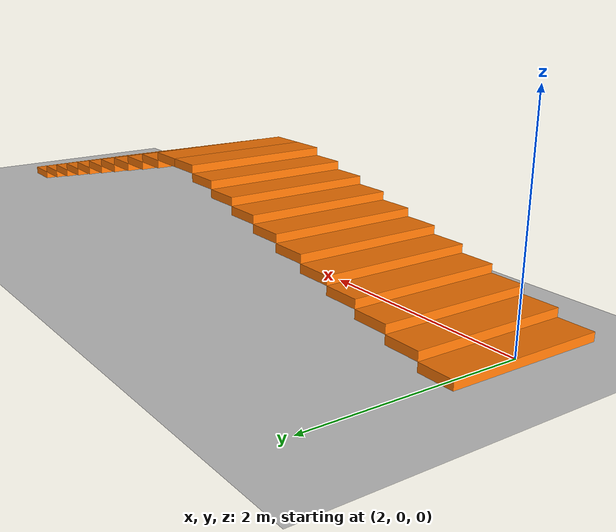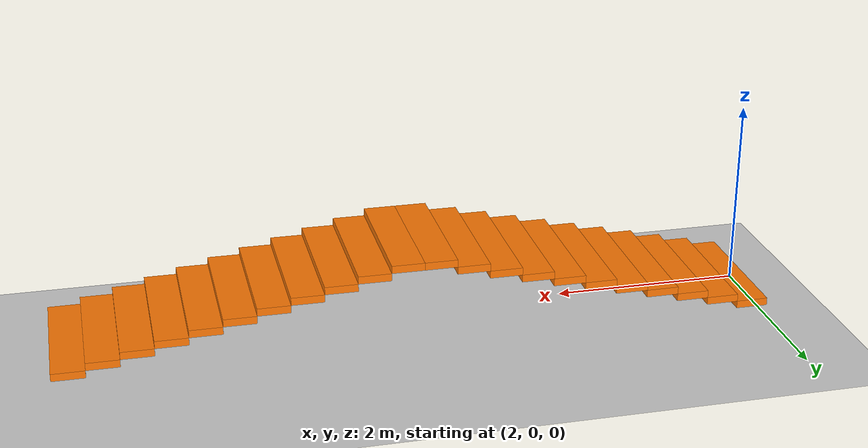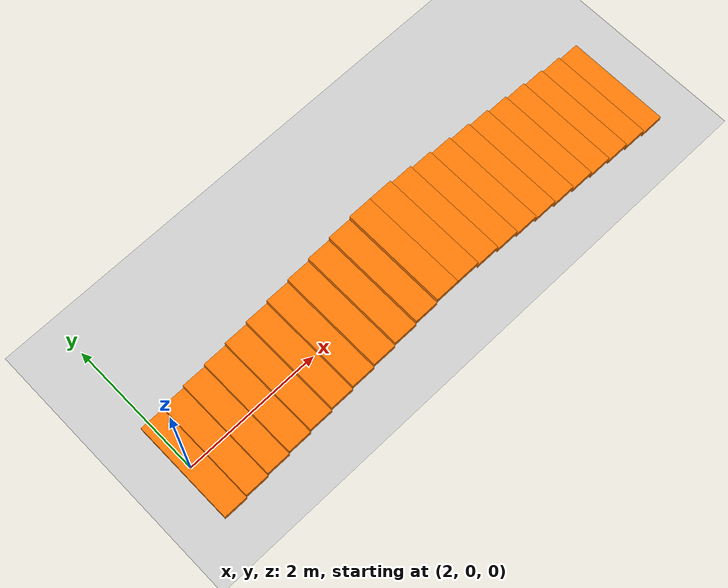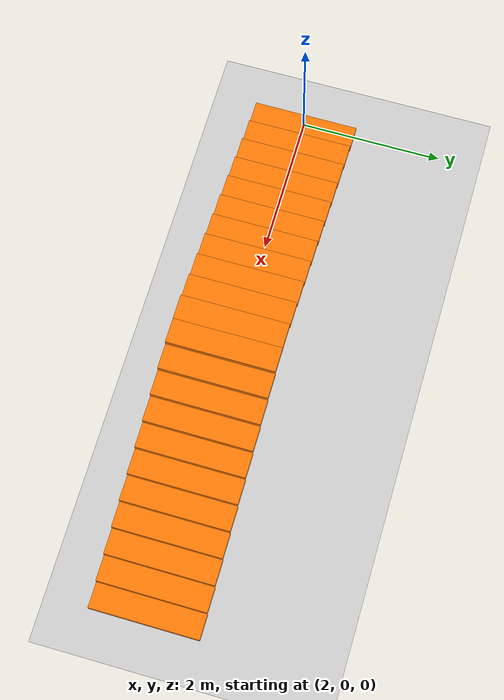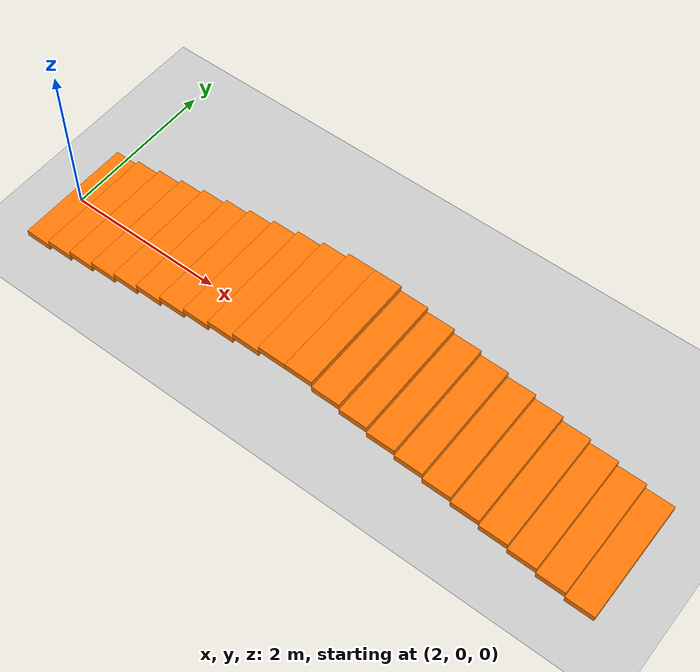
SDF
<sdf version="1.6">
 <world name="default">
  <light name="sun" type="directional">
   <pose>0 0 10 0 -0 0</pose>
   <diffuse>0.8 0.8 0.8 1</diffuse>
   <specular>0.2 0.2 0.2 1</specular>
   <attenuation>
    <range>1000</range>
    <constant>0.9</constant>
    <linear>0.01</linear>
    <quadratic>0.001</quadratic>
   </attenuation>
   <direction>-0.5 0.1 -0.9</direction>
  </light>
  <model name="ground_plane">
   <static>1</static>
   <link name="link">
    <collision name="collision">
     <geometry><plane><normal>0 0 1</normal><size>100 100</size></plane></geometry>
     <surface>
      <contact><collide_bitmask>65535</collide_bitmask></contact>
      <friction><ode><mu>100</mu><mu2>50</mu2></ode></friction>
     </surface>
    </collision>
    <visual name="visual">
     <cast_shadows>0</cast_shadows>
     <geometry><plane><normal>0 0 1</normal><size>100 100</size></plane></geometry>
     <material>
      <script><uri>file://media/materials/scripts/gazebo.material</uri><name>Gazebo/Grey</name></script>
     </material>
    </visual>
   </link>
  </model>
  <gravity>0 0 -9.8</gravity>
  <magnetic_field>6e-06 2.3e-05 -4.2e-05</magnetic_field>
  <atmosphere type="adiabatic"/>
  <physics name="default_physics" default="0" type="ode">
   <max_step_size>0.001</max_step_size>
   <real_time_factor>1</real_time_factor>
   <real_time_update_rate>1000</real_time_update_rate>
  </physics>
  <scene><ambient>0.4 0.4 0.4 1</ambient><background>0.7 0.7 0.7 1</background><shadows>1</shadows></scene>
  <audio><device>default</device></audio>
  <spherical_coordinates>
   <surface_model>EARTH_WGS84</surface_model>
   <latitude_deg>0</latitude_deg>
   <longitude_deg>0</longitude_deg>
   <elevation>0</elevation>
   <heading_deg>0</heading_deg>
  </spherical_coordinates>
  <model name="lol">
   <pose>3.78571 -0.002625 0 0 -0 1.56892</pose>
   <link name="Stairs_4">
    <visual name="Stairs_4_Visual_0">
     <pose>0 1.72727 0.040909 0 -0 0</pose>
     <geometry><box><size>1.5 0.345455 0.081818</size></box></geometry>
     <material>
      <script><uri>file://media/materials/scripts/gazebo.material</uri><name>Gazebo/Grey</name></script>
      <ambient>0.996078 0.47451 0.0196078 1</ambient>
     </material>
     <meta><layer>0</layer></meta>
    </visual>
    <collision name="Stairs_4_Collision_0">
     <geometry><box><size>1.5 0.345455 0.081818</size></box></geometry>
     <pose>0 1.72727 0.040909 0 -0 0</pose>
    </collision>
    <visual name="Stairs_4_Visual_1">
     <pose>0 1.38182 0.122727 0 -0 0</pose>
     <geometry><box><size>1.5 0.345455 0.081818</size></box></geometry>
     <material>
      <script><uri>file://media/materials/scripts/gazebo.material</uri><name>Gazebo/Grey</name></script>
      <ambient>0.996078 0.47451 0.0196078 1</ambient>
     </material>
     <meta><layer>0</layer></meta>
    </visual>
    <collision name="Stairs_4_Collision_1">
     <geometry><box><size>1.5 0.345455 0.081818</size></box></geometry>
     <pose>0 1.38182 0.122727 0 -0 0</pose>
    </collision>
    <visual name="Stairs_4_Visual_2">
     <pose>0 1.03636 0.204545 0 -0 0</pose>
     <geometry><box><size>1.5 0.345455 0.081818</size></box></geometry>
     <material>
      <script><uri>file://media/materials/scripts/gazebo.material</uri><name>Gazebo/Grey</name></script>
      <ambient>0.996078 0.47451 0.0196078 1</ambient>
     </material>
     <meta><layer>0</layer></meta>
    </visual>
    <collision name="Stairs_4_Collision_2">
     <geometry><box><size>1.5 0.345455 0.081818</size></box></geometry>
     <pose>0 1.03636 0.204545 0 -0 0</pose>
    </collision>
    <visual name="Stairs_4_Visual_3">
     <pose>0 0.690909 0.286364 0 -0 0</pose>
     <geometry><box><size>1.5 0.345455 0.081818</size></box></geometry>
     <material>
      <script><uri>file://media/materials/scripts/gazebo.material</uri><name>Gazebo/Grey</name></script>
      <ambient>0.996078 0.47451 0.0196078 1</ambient>
     </material>
     <meta><layer>0</layer></meta>
    </visual>
    <collision name="Stairs_4_Collision_3">
     <geometry><box><size>1.5 0.345455 0.081818</size></box></geometry>
     <pose>0 0.690909 0.286364 0 -0 0</pose>
    </collision>
    <visual name="Stairs_4_Visual_4">
     <pose>0 0.345455 0.368182 0 -0 0</pose>
     <geometry><box><size>1.5 0.345455 0.081818</size></box></geometry>
     <material>
      <script><uri>file://media/materials/scripts/gazebo.material</uri><name>Gazebo/Grey</name></script>
      <ambient>0.996078 0.47451 0.0196078 1</ambient>
     </material>
     <meta><layer>0</layer></meta>
    </visual>
    <collision name="Stairs_4_Collision_4">
     <geometry><box><size>1.5 0.345455 0.081818</size></box></geometry>
     <pose>0 0.345455 0.368182 0 -0 0</pose>
    </collision>
    <visual name="Stairs_4_Visual_5">
     <pose>0 0 0.45 0 -0 0</pose>
     <geometry><box><size>1.5 0.345455 0.081818</size></box></geometry>
     <material>
      <script><uri>file://media/materials/scripts/gazebo.material</uri><name>Gazebo/Grey</name></script>
      <ambient>0.996078 0.47451 0.0196078 1</ambient>
     </material>
     <meta><layer>0</layer></meta>
    </visual>
    <collision name="Stairs_4_Collision_5">
     <geometry><box><size>1.5 0.345455 0.081818</size></box></geometry>
     <pose>0 0 0.45 0 -0 0</pose>
    </collision>
    <visual name="Stairs_4_Visual_6">
     <pose>0 -0.345454 0.531818 0 -0 0</pose>
     <geometry><box><size>1.5 0.345455 0.081818</size></box></geometry>
     <material>
      <script><uri>file://media/materials/scripts/gazebo.material</uri><name>Gazebo/Grey</name></script>
      <ambient>0.996078 0.47451 0.0196078 1</ambient>
     </material>
     <meta><layer>0</layer></meta>
    </visual>
    <collision name="Stairs_4_Collision_6">
     <geometry><box><size>1.5 0.345455 0.081818</size></box></geometry>
     <pose>0 -0.345454 0.531818 0 -0 0</pose>
    </collision>
    <visual name="Stairs_4_Visual_7">
     <pose>0 -0.690909 0.613636 0 -0 0</pose>
     <geometry><box><size>1.5 0.345455 0.081818</size></box></geometry>
     <material>
      <script><uri>file://media/materials/scripts/gazebo.material</uri><name>Gazebo/Grey</name></script>
      <ambient>0.996078 0.47451 0.0196078 1</ambient>
     </material>
     <meta><layer>0</layer></meta>
    </visual>
    <collision name="Stairs_4_Collision_7">
     <geometry><box><size>1.5 0.345455 0.081818</size></box></geometry>
     <pose>0 -0.690909 0.613636 0 -0 0</pose>
    </collision>
    <visual name="Stairs_4_Visual_8">
     <pose>0 -1.03636 0.695455 0 -0 0</pose>
     <geometry><box><size>1.5 0.345455 0.081818</size></box></geometry>
     <material>
      <script><uri>file://media/materials/scripts/gazebo.material</uri><name>Gazebo/Grey</name></script>
      <ambient>0.996078 0.47451 0.0196078 1</ambient>
     </material>
     <meta><layer>0</layer></meta>
    </visual>
    <collision name="Stairs_4_Collision_8">
     <geometry><box><size>1.5 0.345455 0.081818</size></box></geometry>
     <pose>0 -1.03636 0.695455 0 -0 0</pose>
    </collision>
    <visual name="Stairs_4_Visual_9">
     <pose>0 -1.38182 0.777273 0 -0 0</pose>
     <geometry><box><size>1.5 0.345455 0.081818</size></box></geometry>
     <material>
      <script><uri>file://media/materials/scripts/gazebo.material</uri><name>Gazebo/Grey</name></script>
      <ambient>0.996078 0.47451 0.0196078 1</ambient>
     </material>
     <meta><layer>0</layer></meta>
    </visual>
    <collision name="Stairs_4_Collision_9">
     <geometry><box><size>1.5 0.345455 0.081818</size></box></geometry>
     <pose>0 -1.38182 0.777273 0 -0 0</pose>
    </collision>
    <visual name="Stairs_4_Visual_10">
     <pose>0 -1.72727 0.859091 0 -0 0</pose>
     <geometry><box><size>1.5 0.345455 0.081818</size></box></geometry>
     <material>
      <script><uri>file://media/materials/scripts/gazebo.material</uri><name>Gazebo/Grey</name></script>
      <ambient>0.996078 0.47451 0.0196078 1</ambient>
     </material>
     <meta><layer>0</layer></meta>
    </visual>
    <collision name="Stairs_4_Collision_10">
     <geometry><box><size>1.5 0.345455 0.081818</size></box></geometry>
     <pose>0 -1.72727 0.859091 0 -0 0</pose>
    </collision>
   </link>
   <static>1</static>
  </model>
  <model name="lol_0">
   <pose>7.5828 -0.010616 0 0 0 -1.57358</pose>
   <link name="Stairs_4">
    <visual name="Stairs_4_Visual_0">
     <pose>0 1.72727 0.040909 0 -0 0</pose>
     <geometry><box><size>1.5 0.345455 0.081818</size></box></geometry>
     <material>
      <script><uri>file://media/materials/scripts/gazebo.material</uri><name>Gazebo/Grey</name></script>
      <ambient>0.996078 0.47451 0.0196078 1</ambient>
     </material>
     <meta><layer>0</layer></meta>
    </visual>
    <collision name="Stairs_4_Collision_0">
     <geometry><box><size>1.5 0.345455 0.081818</size></box></geometry>
     <pose>0 1.72727 0.040909 0 -0 0</pose>
    </collision>
    <visual name="Stairs_4_Visual_1">
     <pose>0 1.38182 0.122727 0 -0 0</pose>
     <geometry><box><size>1.5 0.345455 0.081818</size></box></geometry>
     <material>
      <script><uri>file://media/materials/scripts/gazebo.material</uri><name>Gazebo/Grey</name></script>
      <ambient>0.996078 0.47451 0.0196078 1</ambient>
     </material>
     <meta><layer>0</layer></meta>
    </visual>
    <collision name="Stairs_4_Collision_1">
     <geometry><box><size>1.5 0.345455 0.081818</size></box></geometry>
     <pose>0 1.38182 0.122727 0 -0 0</pose>
    </collision>
    <visual name="Stairs_4_Visual_2">
     <pose>0 1.03636 0.204545 0 -0 0</pose>
     <geometry><box><size>1.5 0.345455 0.081818</size></box></geometry>
     <material>
      <script><uri>file://media/materials/scripts/gazebo.material</uri><name>Gazebo/Grey</name></script>
      <ambient>0.996078 0.47451 0.0196078 1</ambient>
     </material>
     <meta><layer>0</layer></meta>
    </visual>
    <collision name="Stairs_4_Collision_2">
     <geometry><box><size>1.5 0.345455 0.081818</size></box></geometry>
     <pose>0 1.03636 0.204545 0 -0 0</pose>
    </collision>
    <visual name="Stairs_4_Visual_3">
     <pose>0 0.690909 0.286364 0 -0 0</pose>
     <geometry><box><size>1.5 0.345455 0.081818</size></box></geometry>
     <material>
      <script><uri>file://media/materials/scripts/gazebo.material</uri><name>Gazebo/Grey</name></script>
      <ambient>0.996078 0.47451 0.0196078 1</ambient>
     </material>
     <meta><layer>0</layer></meta>
    </visual>
    <collision name="Stairs_4_Collision_3">
     <geometry><box><size>1.5 0.345455 0.081818</size></box></geometry>
     <pose>0 0.690909 0.286364 0 -0 0</pose>
    </collision>
    <visual name="Stairs_4_Visual_4">
     <pose>0 0.345455 0.368182 0 -0 0</pose>
     <geometry><box><size>1.5 0.345455 0.081818</size></box></geometry>
     <material>
      <script><uri>file://media/materials/scripts/gazebo.material</uri><name>Gazebo/Grey</name></script>
      <ambient>0.996078 0.47451 0.0196078 1</ambient>
     </material>
     <meta><layer>0</layer></meta>
    </visual>
    <collision name="Stairs_4_Collision_4">
     <geometry><box><size>1.5 0.345455 0.081818</size></box></geometry>
     <pose>0 0.345455 0.368182 0 -0 0</pose>
    </collision>
    <visual name="Stairs_4_Visual_5">
     <pose>0 0 0.45 0 -0 0</pose>
     <geometry><box><size>1.5 0.345455 0.081818</size></box></geometry>
     <material>
      <script><uri>file://media/materials/scripts/gazebo.material</uri><name>Gazebo/Grey</name></script>
      <ambient>0.996078 0.47451 0.0196078 1</ambient>
     </material>
     <meta><layer>0</layer></meta>
    </visual>
    <collision name="Stairs_4_Collision_5">
     <geometry><box><size>1.5 0.345455 0.081818</size></box></geometry>
     <pose>0 0 0.45 0 -0 0</pose>
    </collision>
    <visual name="Stairs_4_Visual_6">
     <pose>0 -0.345454 0.531818 0 -0 0</pose>
     <geometry><box><size>1.5 0.345455 0.081818</size></box></geometry>
     <material>
      <script><uri>file://media/materials/scripts/gazebo.material</uri><name>Gazebo/Grey</name></script>
      <ambient>0.996078 0.47451 0.0196078 1</ambient>
     </material>
     <meta><layer>0</layer></meta>
    </visual>
    <collision name="Stairs_4_Collision_6">
     <geometry><box><size>1.5 0.345455 0.081818</size></box></geometry>
     <pose>0 -0.345454 0.531818 0 -0 0</pose>
    </collision>
    <visual name="Stairs_4_Visual_7">
     <pose>0 -0.690909 0.613636 0 -0 0</pose>
     <geometry><box><size>1.5 0.345455 0.081818</size></box></geometry>
     <material>
      <script><uri>file://media/materials/scripts/gazebo.material</uri><name>Gazebo/Grey</name></script>
      <ambient>0.996078 0.47451 0.0196078 1</ambient>
     </material>
     <meta><layer>0</layer></meta>
    </visual>
    <collision name="Stairs_4_Collision_7">
     <geometry><box><size>1.5 0.345455 0.081818</size></box></geometry>
     <pose>0 -0.690909 0.613636 0 -0 0</pose>
    </collision>
    <visual name="Stairs_4_Visual_8">
     <pose>0 -1.03636 0.695455 0 -0 0</pose>
     <geometry><box><size>1.5 0.345455 0.081818</size></box></geometry>
     <material>
      <script><uri>file://media/materials/scripts/gazebo.material</uri><name>Gazebo/Grey</name></script>
      <ambient>0.996078 0.47451 0.0196078 1</ambient>
     </material>
     <meta><layer>0</layer></meta>
    </visual>
    <collision name="Stairs_4_Collision_8">
     <geometry><box><size>1.5 0.345455 0.081818</size></box></geometry>
     <pose>0 -1.03636 0.695455 0 -0 0</pose>
    </collision>
    <visual name="Stairs_4_Visual_9">
     <pose>0 -1.38182 0.777273 0 -0 0</pose>
     <geometry><box><size>1.5 0.345455 0.081818</size></box></geometry>
     <material>
      <script><uri>file://media/materials/scripts/gazebo.material</uri><name>Gazebo/Grey</name></script>
      <ambient>0.996078 0.47451 0.0196078 1</ambient>
     </material>
     <meta><layer>0</layer></meta>
    </visual>
    <collision name="Stairs_4_Collision_9">
     <geometry><box><size>1.5 0.345455 0.081818</size></box></geometry>
     <pose>0 -1.38182 0.777273 0 -0 0</pose>
    </collision>
    <visual name="Stairs_4_Visual_10">
     <pose>0 -1.72727 0.859091 0 -0 0</pose>
     <geometry><box><size>1.5 0.345455 0.081818</size></box></geometry>
     <material>
      <script><uri>file://media/materials/scripts/gazebo.material</uri><name>Gazebo/Grey</name></script>
      <ambient>0.996078 0.47451 0.0196078 1</ambient>
     </material>
     <meta><layer>0</layer></meta>
    </visual>
    <collision name="Stairs_4_Collision_10">
     <geometry><box><size>1.5 0.345455 0.081818</size></box></geometry>
     <pose>0 -1.72727 0.859091 0 -0 0</pose>
    </collision>
   </link>
   <static>1</static>
  </model>
 </world>
</sdf>
